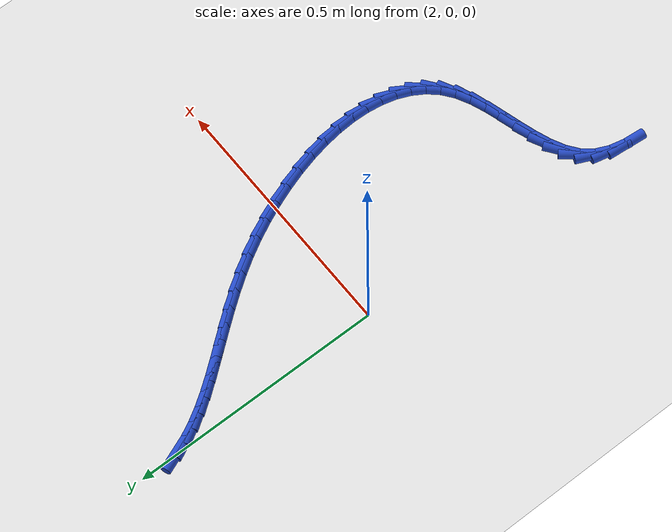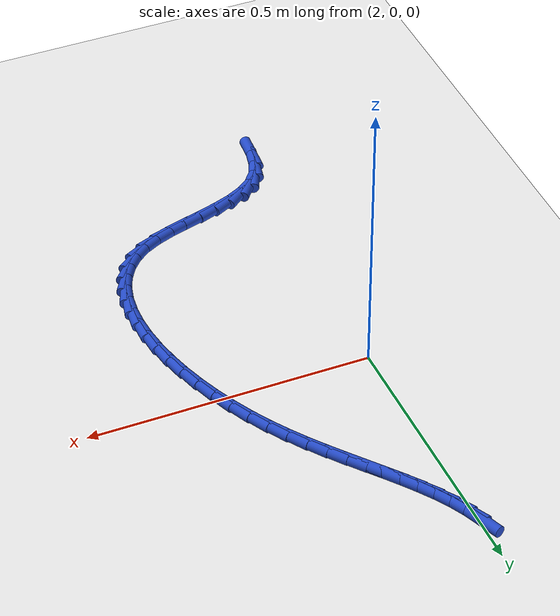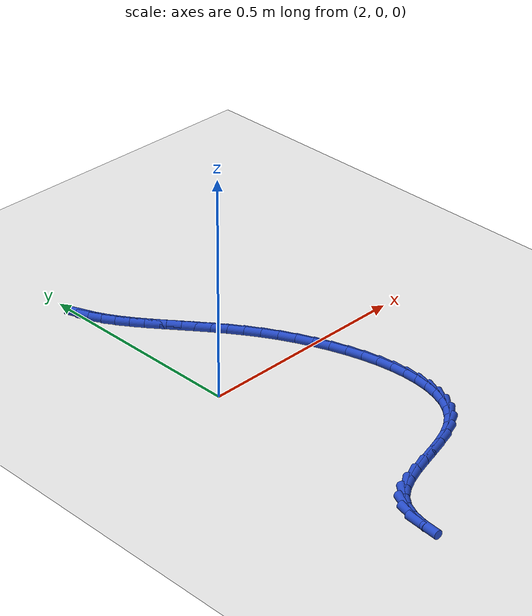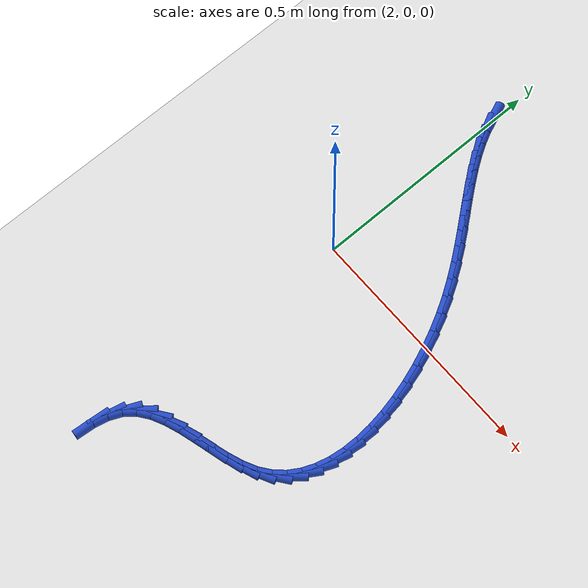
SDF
<sdf version="1.6">
 <world name="default">
  <model name="ground_plane">
   <static>1</static>
   <link name="link">
    <collision name="collision">
     <geometry><plane><normal>0 0 1</normal><size>100 100</size></plane></geometry>
     <surface><friction><ode><mu>100</mu><mu2>50</mu2></ode></friction></surface>
    </collision>
    <visual name="visual">
     <cast_shadows>0</cast_shadows>
     <geometry><plane><normal>0 0 1</normal><size>100 100</size></plane></geometry>
     <material>
      <script><uri>file://media/materials/scripts/gazebo.material</uri><name>Gazebo/WhiteGlow</name></script>
     </material>
    </visual>
   </link>
  </model>
  <model name="line">
   <link name="link_100">
    <pose>2.0000691083450444 0.42340518071355293 0.01 0 1.57 -1.1904182833578383</pose>
    <collision name="collision">
     <geometry><cylinder><radius>0.01</radius><length>0.08</length></cylinder></geometry>
    </collision>
    <visual name="visual">
     <material>
      <script><name>Gazebo/Blue</name><uri>file://media/materials/scripts/gazebo.material</uri></script>
     </material>
     <geometry><cylinder><radius>0.01</radius><length>0.08</length></cylinder></geometry>
    </visual>
   </link>
   <link name="link_101">
    <pose>2.0106639660795795 0.3969081755549869 0.01 0 1.57 -1.1012387039723956</pose>
    <collision name="collision">
     <geometry><cylinder><radius>0.01</radius><length>0.08</length></cylinder></geometry>
    </collision>
    <visual name="visual">
     <material>
      <script><name>Gazebo/Blue</name><uri>file://media/materials/scripts/gazebo.material</uri></script>
     </material>
     <geometry><cylinder><radius>0.01</radius><length>0.08</length></cylinder></geometry>
    </visual>
   </link>
   <link name="link_102">
    <pose>2.0238081047777476 0.3710037753954017 0.01 0 1.57 -1.0290401558910005</pose>
    <collision name="collision">
     <geometry><cylinder><radius>0.01</radius><length>0.08</length></cylinder></geometry>
    </collision>
    <visual name="visual">
     <material>
      <script><name>Gazebo/Blue</name><uri>file://media/materials/scripts/gazebo.material</uri></script>
     </material>
     <geometry><cylinder><radius>0.01</radius><length>0.08</length></cylinder></geometry>
    </visual>
   </link>
   <link name="link_103">
    <pose>2.0391651709312777 0.34548604053629944 0.01 0 1.57 -0.9734989373845796</pose>
    <collision name="collision">
     <geometry><cylinder><radius>0.01</radius><length>0.08</length></cylinder></geometry>
    </collision>
    <visual name="visual">
     <material>
      <script><name>Gazebo/Blue</name><uri>file://media/materials/scripts/gazebo.material</uri></script>
     </material>
     <geometry><cylinder><radius>0.01</radius><length>0.08</length></cylinder></geometry>
    </visual>
   </link>
   <link name="link_104">
    <pose>2.056398811031904 0.3201490312791825 0.01 0 1.57 -0.9335778565058855</pose>
    <collision name="collision">
     <geometry><cylinder><radius>0.01</radius><length>0.08</length></cylinder></geometry>
    </collision>
    <visual name="visual">
     <material>
      <script><name>Gazebo/Blue</name><uri>file://media/materials/scripts/gazebo.material</uri></script>
     </material>
     <geometry><cylinder><radius>0.01</radius><length>0.08</length></cylinder></geometry>
    </visual>
   </link>
   <link name="link_105">
    <pose>2.0751726715713557 0.29478680792555384 0.01 0 1.57 -0.9080083345994701</pose>
    <collision name="collision">
     <geometry><cylinder><radius>0.01</radius><length>0.08</length></cylinder></geometry>
    </collision>
    <visual name="visual">
     <material>
      <script><name>Gazebo/Blue</name><uri>file://media/materials/scripts/gazebo.material</uri></script>
     </material>
     <geometry><cylinder><radius>0.01</radius><length>0.08</length></cylinder></geometry>
    </visual>
   </link>
   <link name="link_106">
    <pose>2.095150399041363 0.26919343077691554 0.01 0 1.57 -0.8955668337158125</pose>
    <collision name="collision">
     <geometry><cylinder><radius>0.01</radius><length>0.08</length></cylinder></geometry>
    </collision>
    <visual name="visual">
     <material>
      <script><name>Gazebo/Blue</name><uri>file://media/materials/scripts/gazebo.material</uri></script>
     </material>
     <geometry><cylinder><radius>0.01</radius><length>0.08</length></cylinder></geometry>
    </visual>
   </link>
   <link name="link_107">
    <pose>2.115995639933659 0.24316296013476998 0.01 0 1.57 -0.8951964913153772</pose>
    <collision name="collision">
     <geometry><cylinder><radius>0.01</radius><length>0.08</length></cylinder></geometry>
    </collision>
    <visual name="visual">
     <material>
      <script><name>Gazebo/Blue</name><uri>file://media/materials/scripts/gazebo.material</uri></script>
     </material>
     <geometry><cylinder><radius>0.01</radius><length>0.08</length></cylinder></geometry>
    </visual>
   </link>
   <link name="link_108">
    <pose>2.1373720407399723 0.21648945630061922 0.01 0 1.57 -0.9060322694759152</pose>
    <collision name="collision">
     <geometry><cylinder><radius>0.01</radius><length>0.08</length></cylinder></geometry>
    </collision>
    <visual name="visual">
     <material>
      <script><name>Gazebo/Blue</name><uri>file://media/materials/scripts/gazebo.material</uri></script>
     </material>
     <geometry><cylinder><radius>0.01</radius><length>0.08</length></cylinder></geometry>
    </visual>
   </link>
   <link name="link_109">
    <pose>2.158943247952036 0.18896697957596637 0.01 0 1.57 -0.9273709605185472</pose>
    <collision name="collision">
     <geometry><cylinder><radius>0.01</radius><length>0.08</length></cylinder></geometry>
    </collision>
    <visual name="visual">
     <material>
      <script><name>Gazebo/Blue</name><uri>file://media/materials/scripts/gazebo.material</uri></script>
     </material>
     <geometry><cylinder><radius>0.01</radius><length>0.08</length></cylinder></geometry>
    </visual>
   </link>
   <link name="link_110">
    <pose>2.18037290806158 0.16038959026231348 0.01 0 1.57 -0.9586100523063572</pose>
    <collision name="collision">
     <geometry><cylinder><radius>0.01</radius><length>0.08</length></cylinder></geometry>
    </collision>
    <visual name="visual">
     <material>
      <script><name>Gazebo/Blue</name><uri>file://media/materials/scripts/gazebo.material</uri></script>
     </material>
     <geometry><cylinder><radius>0.01</radius><length>0.08</length></cylinder></geometry>
    </visual>
   </link>
   <link name="link_111">
    <pose>2.2013246675603355 0.13055134866116294 0.01 0 1.57 -0.9991686601985323</pose>
    <collision name="collision">
     <geometry><cylinder><radius>0.01</radius><length>0.08</length></cylinder></geometry>
    </collision>
    <visual name="visual">
     <material>
      <script><name>Gazebo/Blue</name><uri>file://media/materials/scripts/gazebo.material</uri></script>
     </material>
     <geometry><cylinder><radius>0.01</radius><length>0.08</length></cylinder></geometry>
    </visual>
   </link>
   <link name="link_112">
    <pose>2.221462172940034 0.09924631507401671 0.01 0 1.57 -1.0474736983022641</pose>
    <collision name="collision">
     <geometry><cylinder><radius>0.01</radius><length>0.08</length></cylinder></geometry>
    </collision>
    <visual name="visual">
     <material>
      <script><name>Gazebo/Blue</name><uri>file://media/materials/scripts/gazebo.material</uri></script>
     </material>
     <geometry><cylinder><radius>0.01</radius><length>0.08</length></cylinder></geometry>
    </visual>
   </link>
   <link name="link_113">
    <pose>2.240460815701075 0.06631870481339791 0.01 0 1.57 -1.0969140585130086</pose>
    <collision name="collision">
     <geometry><cylinder><radius>0.01</radius><length>0.08</length></cylinder></geometry>
    </collision>
    <visual name="visual">
     <material>
      <script><name>Gazebo/Blue</name><uri>file://media/materials/scripts/gazebo.material</uri></script>
     </material>
     <geometry><cylinder><radius>0.01</radius><length>0.08</length></cylinder></geometry>
    </visual>
   </link>
   <link name="link_114">
    <pose>2.2580787810658816 0.03196628934130513 0.01 0 1.57 -1.1458618231699673</pose>
    <collision name="collision">
     <geometry><cylinder><radius>0.01</radius><length>0.08</length></cylinder></geometry>
    </collision>
    <visual name="visual">
     <material>
      <script><name>Gazebo/Blue</name><uri>file://media/materials/scripts/gazebo.material</uri></script>
     </material>
     <geometry><cylinder><radius>0.01</radius><length>0.08</length></cylinder></geometry>
    </visual>
   </link>
   <link name="link_115">
    <pose>2.274109849896459 -0.003461154909834302 0.01 0 1.57 -1.1956128650950983</pose>
    <collision name="collision">
     <geometry><cylinder><radius>0.01</radius><length>0.08</length></cylinder></geometry>
    </collision>
    <visual name="visual">
     <material>
      <script><name>Gazebo/Blue</name><uri>file://media/materials/scripts/gazebo.material</uri></script>
     </material>
     <geometry><cylinder><radius>0.01</radius><length>0.08</length></cylinder></geometry>
    </visual>
   </link>
   <link name="link_116">
    <pose>2.288347940974419 -0.03961326254596081 0.01 0 1.57 -1.247480403172895</pose>
    <collision name="collision">
     <geometry><cylinder><radius>0.01</radius><length>0.08</length></cylinder></geometry>
    </collision>
    <visual name="visual">
     <material>
      <script><name>Gazebo/Blue</name><uri>file://media/materials/scripts/gazebo.material</uri></script>
     </material>
     <geometry><cylinder><radius>0.01</radius><length>0.08</length></cylinder></geometry>
    </visual>
   </link>
   <link name="link_117">
    <pose>2.3005869730813737 -0.07613966817301628 0.01 0 1.57 -1.3028740549496942</pose>
    <collision name="collision">
     <geometry><cylinder><radius>0.01</radius><length>0.08</length></cylinder></geometry>
    </collision>
    <visual name="visual">
     <material>
      <script><name>Gazebo/Blue</name><uri>file://media/materials/scripts/gazebo.material</uri></script>
     </material>
     <geometry><cylinder><radius>0.01</radius><length>0.08</length></cylinder></geometry>
    </visual>
   </link>
   <link name="link_118">
    <pose>2.3106208649989353 -0.11269000639694221 0.01 0 1.57 -1.363390371639965</pose>
    <collision name="collision">
     <geometry><cylinder><radius>0.01</radius><length>0.08</length></cylinder></geometry>
    </collision>
    <visual name="visual">
     <material>
      <script><name>Gazebo/Blue</name><uri>file://media/materials/scripts/gazebo.material</uri></script>
     </material>
     <geometry><cylinder><radius>0.01</radius><length>0.08</length></cylinder></geometry>
    </visual>
   </link>
   <link name="link_119">
    <pose>2.3182435355087145 -0.1489139118236804 0.01 0 1.57 -1.4309066042289407</pose>
    <collision name="collision">
     <geometry><cylinder><radius>0.01</radius><length>0.08</length></cylinder></geometry>
    </collision>
    <visual name="visual">
     <material>
      <script><name>Gazebo/Blue</name><uri>file://media/materials/scripts/gazebo.material</uri></script>
     </material>
     <geometry><cylinder><radius>0.01</radius><length>0.08</length></cylinder></geometry>
    </visual>
   </link>
   <link name="link_120">
    <pose>2.323248903392325 -0.18446101905917145 0.01 0 1.57 -1.5076709340313417</pose>
    <collision name="collision">
     <geometry><cylinder><radius>0.01</radius><length>0.08</length></cylinder></geometry>
    </collision>
    <visual name="visual">
     <material>
      <script><name>Gazebo/Blue</name><uri>file://media/materials/scripts/gazebo.material</uri></script>
     </material>
     <geometry><cylinder><radius>0.01</radius><length>0.08</length></cylinder></geometry>
    </visual>
   </link>
   <link name="link_121">
    <pose>2.3254308874313785 -0.21898096270935732 0.01 0 1.57 1.5452310084409746</pose>
    <collision name="collision">
     <geometry><cylinder><radius>0.01</radius><length>0.08</length></cylinder></geometry>
    </collision>
    <visual name="visual">
     <material>
      <script><name>Gazebo/Blue</name><uri>file://media/materials/scripts/gazebo.material</uri></script>
     </material>
     <geometry><cylinder><radius>0.01</radius><length>0.08</length></cylinder></geometry>
    </visual>
   </link>
   <link name="link_122">
    <pose>2.3245834064074855 -0.2521233773801792 0.01 0 1.57 1.4415482541909135</pose>
    <collision name="collision">
     <geometry><cylinder><radius>0.01</radius><length>0.08</length></cylinder></geometry>
    </collision>
    <visual name="visual">
     <material>
      <script><name>Gazebo/Blue</name><uri>file://media/materials/scripts/gazebo.material</uri></script>
     </material>
     <geometry><cylinder><radius>0.01</radius><length>0.08</length></cylinder></geometry>
    </visual>
   </link>
   <link name="link_123">
    <pose>2.32050037910226 -0.2835378976775788 0.01 0 1.57 1.3197125057567527</pose>
    <collision name="collision">
     <geometry><cylinder><radius>0.01</radius><length>0.08</length></cylinder></geometry>
    </collision>
    <visual name="visual">
     <material>
      <script><name>Gazebo/Blue</name><uri>file://media/materials/scripts/gazebo.material</uri></script>
     </material>
     <geometry><cylinder><radius>0.01</radius><length>0.08</length></cylinder></geometry>
    </visual>
   </link>
   <link name="link_124">
    <pose>2.312975724297313 -0.3128741582074974 0.01 0 1.57 1.1772456296817322</pose>
    <collision name="collision">
     <geometry><cylinder><radius>0.01</radius><length>0.08</length></cylinder></geometry>
    </collision>
    <visual name="visual">
     <material>
      <script><name>Gazebo/Blue</name><uri>file://media/materials/scripts/gazebo.material</uri></script>
     </material>
     <geometry><cylinder><radius>0.01</radius><length>0.08</length></cylinder></geometry>
    </visual>
   </link>
   <link name="link_125">
    <pose>2.301803360774256 -0.3397817935758771 0.01 0 1.57 1.0138154337687741</pose>
    <collision name="collision">
     <geometry><cylinder><radius>0.01</radius><length>0.08</length></cylinder></geometry>
    </collision>
    <visual name="visual">
     <material>
      <script><name>Gazebo/Blue</name><uri>file://media/materials/scripts/gazebo.material</uri></script>
     </material>
     <geometry><cylinder><radius>0.01</radius><length>0.08</length></cylinder></geometry>
    </visual>
   </link>
   <link name="link_126">
    <pose>2.2867772073147026 -0.3639104383886581 0.01 0 1.57 0.8330917742112157</pose>
    <collision name="collision">
     <geometry><cylinder><radius>0.01</radius><length>0.08</length></cylinder></geometry>
    </collision>
    <visual name="visual">
     <material>
      <script><name>Gazebo/Blue</name><uri>file://media/materials/scripts/gazebo.material</uri></script>
     </material>
     <geometry><cylinder><radius>0.01</radius><length>0.08</length></cylinder></geometry>
    </visual>
   </link>
   <link name="link_127">
    <pose>2.2676911827002635 -0.38490972725178235 0.01 0 1.57 0.6436708293450373</pose>
    <collision name="collision">
     <geometry><cylinder><radius>0.01</radius><length>0.08</length></cylinder></geometry>
    </collision>
    <visual name="visual">
     <material>
      <script><name>Gazebo/Blue</name><uri>file://media/materials/scripts/gazebo.material</uri></script>
     </material>
     <geometry><cylinder><radius>0.01</radius><length>0.08</length></cylinder></geometry>
    </visual>
   </link>
   <link name="link_128">
    <pose>2.244339561619305 -0.4024296364290641 0.01 0 1.57 0.47119744795232194</pose>
    <collision name="collision">
     <geometry><cylinder><radius>0.01</radius><length>0.08</length></cylinder></geometry>
    </collision>
    <visual name="visual">
     <material>
      <script><name>Gazebo/Blue</name><uri>file://media/materials/scripts/gazebo.material</uri></script>
     </material>
     <geometry><cylinder><radius>0.01</radius><length>0.08</length></cylinder></geometry>
    </visual>
   </link>
   <link name="link_129">
    <pose>2.2168463632862547 -0.4164366852452078 0.01 0 1.57 0.3558813686047044</pose>
    <collision name="collision">
     <geometry><cylinder><radius>0.01</radius><length>0.08</length></cylinder></geometry>
    </collision>
    <visual name="visual">
     <material>
      <script><name>Gazebo/Blue</name><uri>file://media/materials/scripts/gazebo.material</uri></script>
     </material>
     <geometry><cylinder><radius>0.01</radius><length>0.08</length></cylinder></geometry>
    </visual>
   </link>
   <link name="link_130">
    <pose>2.1862758461998175 -0.427799989421496 0.01 0 1.57 0.2921180129583744</pose>
    <collision name="collision">
     <geometry><cylinder><radius>0.01</radius><length>0.08</length></cylinder></geometry>
    </collision>
    <visual name="visual">
     <material>
      <script><name>Gazebo/Blue</name><uri>file://media/materials/scripts/gazebo.material</uri></script>
     </material>
     <geometry><cylinder><radius>0.01</radius><length>0.08</length></cylinder></geometry>
    </visual>
   </link>
   <link name="link_131">
    <pose>2.1538587548847588 -0.4375484853649836 0.01 0 1.57 0.27057619316791276</pose>
    <collision name="collision">
     <geometry><cylinder><radius>0.01</radius><length>0.08</length></cylinder></geometry>
    </collision>
    <visual name="visual">
     <material>
      <script><name>Gazebo/Blue</name><uri>file://media/materials/scripts/gazebo.material</uri></script>
     </material>
     <geometry><cylinder><radius>0.01</radius><length>0.08</length></cylinder></geometry>
    </visual>
   </link>
   <link name="link_132">
    <pose>2.1208258338658434 -0.446711109482726 0.01 0 1.57 0.2880654722294983</pose>
    <collision name="collision">
     <geometry><cylinder><radius>0.01</radius><length>0.08</length></cylinder></geometry>
    </collision>
    <visual name="visual">
     <material>
      <script><name>Gazebo/Blue</name><uri>file://media/materials/scripts/gazebo.material</uri></script>
     </material>
     <geometry><cylinder><radius>0.01</radius><length>0.08</length></cylinder></geometry>
    </visual>
   </link>
   <link name="link_133">
    <pose>2.0884078276678393 -0.45631679818177806 0.01 0 1.57 0.3476286148598534</pose>
    <collision name="collision">
     <geometry><cylinder><radius>0.01</radius><length>0.08</length></cylinder></geometry>
    </collision>
    <visual name="visual">
     <material>
      <script><name>Gazebo/Blue</name><uri>file://media/materials/scripts/gazebo.material</uri></script>
     </material>
     <geometry><cylinder><radius>0.01</radius><length>0.08</length></cylinder></geometry>
    </visual>
   </link>
   <link name="link_134">
    <pose>2.057835480815511 -0.467394487869195 0.01 0 1.57 0.45870837131780506</pose>
    <collision name="collision">
     <geometry><cylinder><radius>0.01</radius><length>0.08</length></cylinder></geometry>
    </collision>
    <visual name="visual">
     <material>
      <script><name>Gazebo/Blue</name><uri>file://media/materials/scripts/gazebo.material</uri></script>
     </material>
     <geometry><cylinder><radius>0.01</radius><length>0.08</length></cylinder></geometry>
    </visual>
   </link>
   <link name="link_135">
    <pose>2.0303395378336244 -0.4809731149520321 0.01 0 1.57 0.6356419225630094</pose>
    <collision name="collision">
     <geometry><cylinder><radius>0.01</radius><length>0.08</length></cylinder></geometry>
    </collision>
    <visual name="visual">
     <material>
      <script><name>Gazebo/Blue</name><uri>file://media/materials/scripts/gazebo.material</uri></script>
     </material>
     <geometry><cylinder><radius>0.01</radius><length>0.08</length></cylinder></geometry>
    </visual>
   </link>
   <link name="link_136">
    <pose>2.0071507432469464 -0.49808161583734445 0.01 0 1.57 0.8860522180473475</pose>
    <collision name="collision">
     <geometry><cylinder><radius>0.01</radius><length>0.08</length></cylinder></geometry>
    </collision>
    <visual name="visual">
     <material>
      <script><name>Gazebo/Blue</name><uri>file://media/materials/scripts/gazebo.material</uri></script>
     </material>
     <geometry><cylinder><radius>0.01</radius><length>0.08</length></cylinder></geometry>
    </visual>
   </link>
   <link name="link_137">
    <pose>1.989475609717493 -0.5197280444813394 0.01 0 1.57 1.1481516187889376</pose>
    <collision name="collision">
     <geometry><cylinder><radius>0.01</radius><length>0.08</length></cylinder></geometry>
    </collision>
    <visual name="visual">
     <material>
      <script><name>Gazebo/Blue</name><uri>file://media/materials/scripts/gazebo.material</uri></script>
     </material>
     <geometry><cylinder><radius>0.01</radius><length>0.08</length></cylinder></geometry>
    </visual>
   </link>
   <link name="link_138">
    <pose>1.9776019411768686 -0.5461287332088495 0.01 0 1.57 1.3452586306501855</pose>
    <collision name="collision">
     <geometry><cylinder><radius>0.01</radius><length>0.08</length></cylinder></geometry>
    </collision>
    <visual name="visual">
     <material>
      <script><name>Gazebo/Blue</name><uri>file://media/materials/scripts/gazebo.material</uri></script>
     </material>
     <geometry><cylinder><radius>0.01</radius><length>0.08</length></cylinder></geometry>
    </visual>
   </link>
   <link name="link_139">
    <pose>1.9706374163403892 -0.5764830101185219 0.01 0 1.57 1.4805749907166441</pose>
    <collision name="collision">
     <geometry><cylinder><radius>0.01</radius><length>0.08</length></cylinder></geometry>
    </collision>
    <visual name="visual">
     <material>
      <script><name>Gazebo/Blue</name><uri>file://media/materials/scripts/gazebo.material</uri></script>
     </material>
     <geometry><cylinder><radius>0.01</radius><length>0.08</length></cylinder></geometry>
    </visual>
   </link>
  </model>
 </world>
</sdf>
